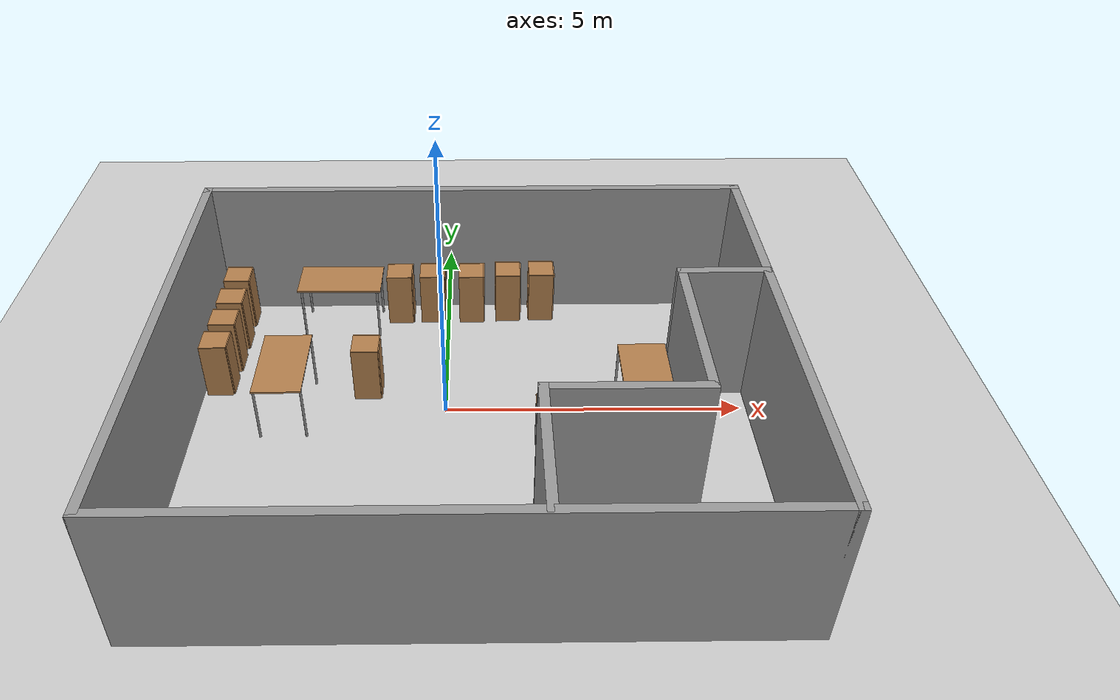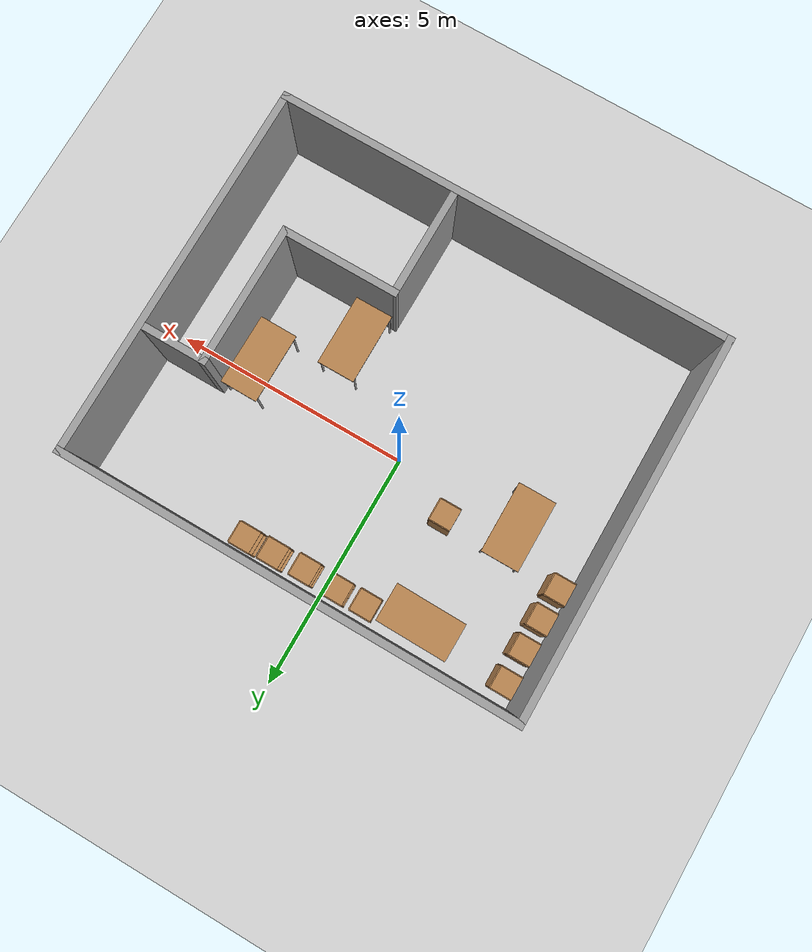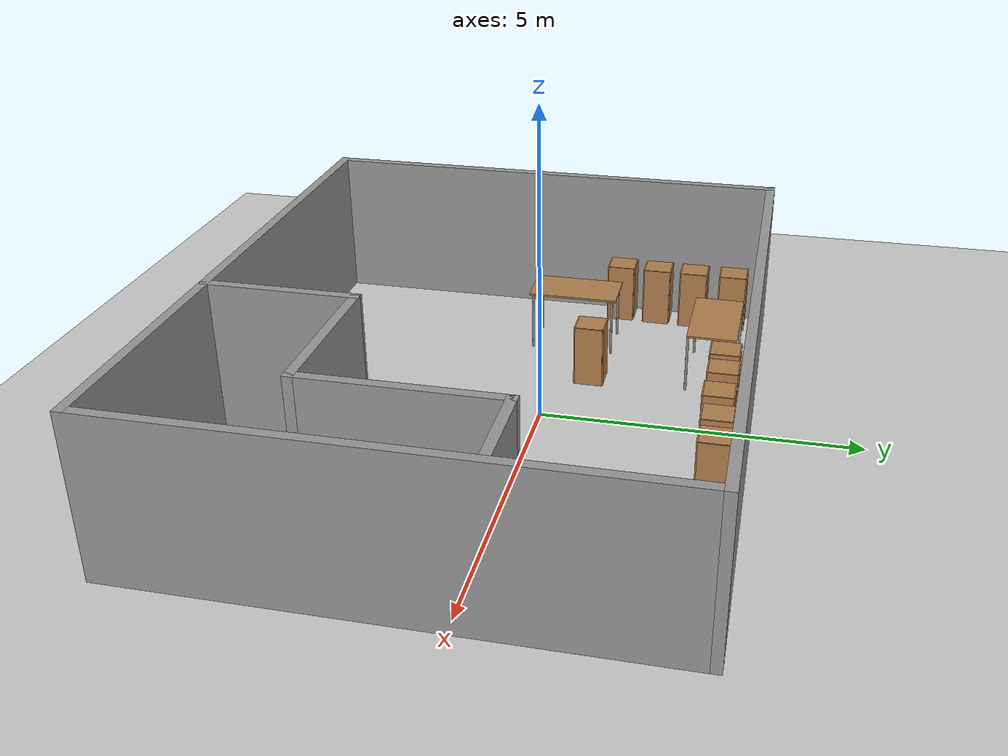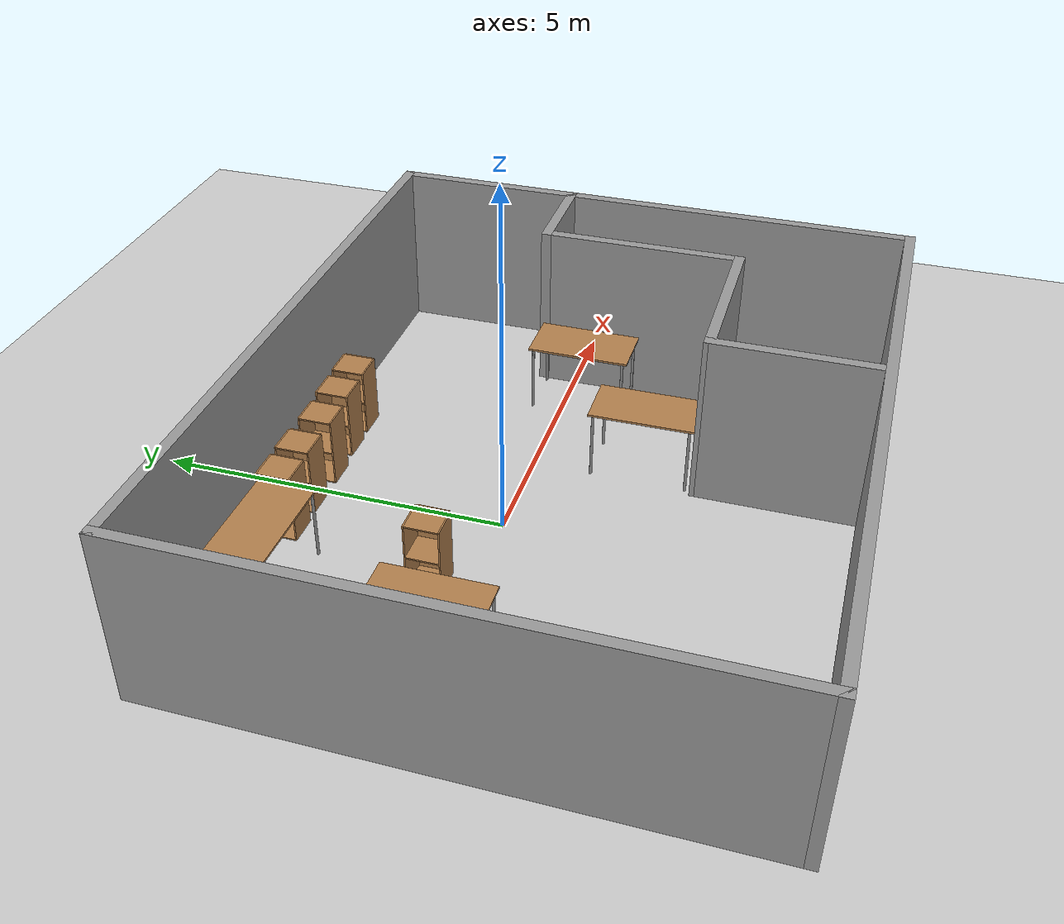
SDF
<sdf version="1.7">
 <world name="default">
  <light name="sun" type="directional">
   <pose>0 0 10 0 -0 0</pose>
   <diffuse>0.8 0.8 0.8 1</diffuse>
   <specular>0.2 0.2 0.2 1</specular>
   <attenuation>
    <range>1000</range>
    <constant>0.9</constant>
    <linear>0.01</linear>
    <quadratic>0.001</quadratic>
   </attenuation>
   <direction>-0.5 0.1 -0.9</direction>
   <spot><inner_angle>0</inner_angle><outer_angle>0</outer_angle><falloff>0</falloff></spot>
  </light>
  <model name="ground_plane">
   <static>1</static>
   <link name="link">
    <collision name="collision">
     <geometry><plane><normal>0 0 1</normal><size>100 100</size></plane></geometry>
     <surface><friction><ode><mu>100</mu><mu2>50</mu2></ode></friction></surface>
    </collision>
    <visual name="visual">
     <cast_shadows>0</cast_shadows>
     <geometry><plane><normal>0 0 1</normal><size>100 100</size></plane></geometry>
     <material>
      <script><uri>file://media/materials/scripts/gazebo.material</uri><name>Gazebo/Grey</name></script>
     </material>
    </visual>
   </link>
  </model>
  <gravity>0 0 -9.8</gravity>
  <magnetic_field>6e-06 2.3e-05 -4.2e-05</magnetic_field>
  <atmosphere type="adiabatic"/>
  <physics type="ode">
   <max_step_size>0.001</max_step_size>
   <real_time_factor>1</real_time_factor>
   <real_time_update_rate>1000</real_time_update_rate>
  </physics>
  <scene><ambient>0.4 0.4 0.4 1</ambient><background>0.7 0.7 0.7 1</background><shadows>1</shadows></scene>
  <audio><device>default</device></audio>
  <spherical_coordinates>
   <surface_model>EARTH_WGS84</surface_model>
   <latitude_deg>0</latitude_deg>
   <longitude_deg>0</longitude_deg>
   <elevation>0</elevation>
   <heading_deg>0</heading_deg>
  </spherical_coordinates>
  <model name="cmit_room">
   <pose>0.464192 -0.72522 0 0 -0 0</pose>
   <link name="Wall_1">
    <collision name="Wall_1_Collision">
     <geometry><box><size>9.6 0.15 2.5</size></box></geometry>
     <pose>0 0 1.25 0 -0 0</pose>
    </collision>
    <visual name="Wall_1_Visual">
     <pose>0 0 1.25 0 -0 0</pose>
     <geometry><box><size>9.6 0.15 2.5</size></box></geometry>
     <material>
      <script><uri>file://media/materials/scripts/gazebo.material</uri><name>Gazebo/Grey</name></script>
      <ambient>1 1 1 1</ambient>
     </material>
     <meta><layer>0</layer></meta>
    </visual>
    <pose>-0 -3.925 0 0 -0 0</pose>
   </link>
   <link name="Wall_11">
    <collision name="Wall_11_Collision">
     <geometry><box><size>8 0.15 2.5</size></box></geometry>
     <pose>0 0 1.25 0 -0 0</pose>
    </collision>
    <visual name="Wall_11_Visual">
     <pose>0 0 1.25 0 -0 0</pose>
     <geometry><box><size>8 0.15 2.5</size></box></geometry>
     <material>
      <script><uri>file://media/materials/scripts/gazebo.material</uri><name>Gazebo/Grey</name></script>
      <ambient>1 1 1 1</ambient>
     </material>
     <meta><layer>0</layer></meta>
    </visual>
    <pose>-4.725 0 0 0 -0 1.5708</pose>
   </link>
   <link name="Wall_12">
    <collision name="Wall_12_Collision">
     <geometry><box><size>9.6 0.15 2.5</size></box></geometry>
     <pose>0 0 1.25 0 -0 0</pose>
    </collision>
    <visual name="Wall_12_Visual">
     <pose>0 0 1.25 0 -0 0</pose>
     <geometry><box><size>9.6 0.15 2.5</size></box></geometry>
     <material>
      <script><uri>file://media/materials/scripts/gazebo.material</uri><name>Gazebo/Grey</name></script>
      <ambient>1 1 1 1</ambient>
     </material>
     <meta><layer>0</layer></meta>
    </visual>
    <pose>-0 3.925 0 0 -0 0</pose>
   </link>
   <link name="Wall_14">
    <collision name="Wall_14_Collision">
     <geometry><box><size>1.5 0.15 2.5</size></box></geometry>
     <pose>0 0 1.25 0 -0 0</pose>
    </collision>
    <visual name="Wall_14_Visual">
     <pose>0 0 1.25 0 -0 0</pose>
     <geometry><box><size>1.5 0.15 2.5</size></box></geometry>
     <material>
      <script><uri>file://media/materials/scripts/gazebo.material</uri><name>Gazebo/Grey</name></script>
      <ambient>1 1 1 1</ambient>
     </material>
     <meta><layer>0</layer></meta>
    </visual>
    <pose>4.03262 1.22052 0 0 -0 3.14159</pose>
   </link>
   <link name="Wall_15">
    <collision name="Wall_15_Collision">
     <geometry><box><size>3 0.15 2.5</size></box></geometry>
     <pose>0 0 1.25 0 -0 0</pose>
    </collision>
    <visual name="Wall_15_Visual">
     <pose>0 0 1.25 0 -0 0</pose>
     <geometry><box><size>3 0.15 2.5</size></box></geometry>
     <material>
      <script><uri>file://media/materials/scripts/gazebo.material</uri><name>Gazebo/Grey</name></script>
      <ambient>1 1 1 1</ambient>
     </material>
     <meta><layer>0</layer></meta>
    </visual>
    <pose>3.35762 -0.204478 0 0 -0 -1.5708</pose>
   </link>
   <link name="Wall_16">
    <collision name="Wall_16_Collision">
     <geometry><box><size>2.5 0.15 2.5</size></box></geometry>
     <pose>0 0 1.25 0 -0 0</pose>
    </collision>
    <visual name="Wall_16_Visual">
     <pose>0 0 1.25 0 -0 0</pose>
     <geometry><box><size>2.5 0.15 2.5</size></box></geometry>
     <material>
      <script><uri>file://media/materials/scripts/gazebo.material</uri><name>Gazebo/Grey</name></script>
      <ambient>1 1 1 1</ambient>
     </material>
     <meta><layer>0</layer></meta>
    </visual>
    <pose>2.18262 -1.62948 0 0 -0 3.14159</pose>
   </link>
   <link name="Wall_17">
    <collision name="Wall_17_Collision">
     <geometry><box><size>2.42896 0.15 2.5</size></box></geometry>
     <pose>0 0 1.25 0 -0 0</pose>
    </collision>
    <visual name="Wall_17_Visual">
     <pose>0 0 1.25 0 -0 0</pose>
     <geometry><box><size>2.42896 0.15 2.5</size></box></geometry>
     <material>
      <script><uri>file://media/materials/scripts/gazebo.material</uri><name>Gazebo/Grey</name></script>
      <ambient>1 1 1 1</ambient>
     </material>
     <meta><layer>0</layer></meta>
    </visual>
    <pose>1.00717 -2.76896 0 0 -0 -1.57119</pose>
   </link>
   <link name="Wall_6">
    <collision name="Wall_6_Collision">
     <geometry><box><size>8 0.15 2.5</size></box></geometry>
     <pose>0 0 1.25 0 -0 0</pose>
    </collision>
    <visual name="Wall_6_Visual">
     <pose>0 0 1.25 0 -0 0</pose>
     <geometry><box><size>8 0.15 2.5</size></box></geometry>
     <material>
      <script><uri>file://media/materials/scripts/gazebo.material</uri><name>Gazebo/Grey</name></script>
      <ambient>1 1 1 1</ambient>
     </material>
     <meta><layer>0</layer></meta>
    </visual>
    <pose>4.725 0 0 0 -0 1.5708</pose>
   </link>
   <static>1</static>
  </model>
  <model name="cabinet">
   <static>1</static>
   <link name="cabinet_bottom_plate">
    <inertial>
     <pose>0 0 -1 0 -0 0</pose>
     <inertia><ixx>2.05</ixx><ixy>0</ixy><ixz>0</ixz><iyy>2.05</iyy><iyz>0</iyz><izz>2.05</izz></inertia>
     <mass>25</mass>
    </inertial>
    <collision name="cabinet_bottom_plate_geom">
     <pose>0 0 0.01 0 -0 0</pose>
     <geometry><box><size>0.45 0.45 0.02</size></box></geometry>
    </collision>
    <visual name="cabinet_bottom_plate_geom_visual">
     <pose>0 0 0.01 0 -0 0</pose>
     <geometry><box><size>0.45 0.45 0.02</size></box></geometry>
     <material>
      <script><uri>file://media/materials/scripts/gazebo.material</uri><name>Gazebo/Wood</name></script>
     </material>
    </visual>
    <collision name="cabinet_bottom_plate_geom_cabinet_back_plate">
     <pose>0.235 0 0.51 0 -0 0</pose>
     <geometry><box><size>0.02 0.45 1.02</size></box></geometry>
    </collision>
    <visual name="cabinet_bottom_plate_geom_cabinet_back_plate_visual">
     <pose>0.235 0 0.51 0 -0 0</pose>
     <geometry><box><size>0.02 0.45 1.02</size></box></geometry>
     <material>
      <script><uri>file://media/materials/scripts/gazebo.material</uri><name>Gazebo/Wood</name></script>
     </material>
    </visual>
    <collision name="cabinet_bottom_plate_geom_cabinet_left_plate">
     <pose>0 0.235 0.51 0 -0 0</pose>
     <geometry><box><size>0.45 0.02 1.02</size></box></geometry>
    </collision>
    <visual name="cabinet_bottom_plate_geom_cabinet_left_plate_visual">
     <pose>0 0.235 0.51 0 -0 0</pose>
     <geometry><box><size>0.45 0.02 1.02</size></box></geometry>
     <material>
      <script><uri>file://media/materials/scripts/gazebo.material</uri><name>Gazebo/Wood</name></script>
     </material>
    </visual>
    <collision name="cabinet_bottom_plate_geom_cabinet_middle_plate">
     <pose>0 0 0.51 0 -0 0</pose>
     <geometry><box><size>0.45 0.45 0.02</size></box></geometry>
    </collision>
    <visual name="cabinet_bottom_plate_geom_cabinet_middle_plate_visual">
     <pose>0 0 0.51 0 -0 0</pose>
     <geometry><box><size>0.45 0.45 0.02</size></box></geometry>
     <material>
      <script><uri>file://media/materials/scripts/gazebo.material</uri><name>Gazebo/Wood</name></script>
     </material>
    </visual>
    <collision name="cabinet_bottom_plate_geom_cabinet_right_plate">
     <pose>0 -0.235 0.51 0 -0 0</pose>
     <geometry><box><size>0.45 0.02 1.02</size></box></geometry>
    </collision>
    <visual name="cabinet_bottom_plate_geom_cabinet_right_plate_visual">
     <pose>0 -0.235 0.51 0 -0 0</pose>
     <geometry><box><size>0.45 0.02 1.02</size></box></geometry>
     <material>
      <script><uri>file://media/materials/scripts/gazebo.material</uri><name>Gazebo/Wood</name></script>
     </material>
    </visual>
    <collision name="cabinet_bottom_plate_geom_cabinet_top_plate">
     <pose>0 0 1.01 0 -0 0</pose>
     <geometry><box><size>0.45 0.45 0.02</size></box></geometry>
    </collision>
    <visual name="cabinet_bottom_plate_geom_cabinet_top_plate_visual">
     <pose>0 0 1.01 0 -0 0</pose>
     <geometry><box><size>0.45 0.45 0.02</size></box></geometry>
     <material>
      <script><uri>file://media/materials/scripts/gazebo.material</uri><name>Gazebo/Wood</name></script>
     </material>
    </visual>
   </link>
   <pose>-3.86136 2.69886 0 0 -0 0</pose>
  </model>
  <model name="table">
   <static>1</static>
   <link name="link">
    <collision name="surface">
     <pose>0 0 1 0 -0 0</pose>
     <geometry><box><size>1.5 0.8 0.03</size></box></geometry>
     <surface><friction><ode><mu>0.6</mu><mu2>0.6</mu2></ode></friction></surface>
    </collision>
    <visual name="visual1">
     <pose>0 0 1 0 -0 0</pose>
     <geometry><box><size>1.5 0.8 0.03</size></box></geometry>
     <material>
      <script><uri>file://media/materials/scripts/gazebo.material</uri><name>Gazebo/Wood</name></script>
     </material>
    </visual>
    <collision name="front_left_leg">
     <pose>0.68 0.38 0.5 0 -0 0</pose>
     <geometry><cylinder><radius>0.02</radius><length>1</length></cylinder></geometry>
    </collision>
    <visual name="front_left_leg">
     <pose>0.68 0.38 0.5 0 -0 0</pose>
     <geometry><cylinder><radius>0.02</radius><length>1</length></cylinder></geometry>
     <material>
      <script><uri>file://media/materials/scripts/gazebo.material</uri><name>Gazebo/Grey</name></script>
     </material>
    </visual>
    <collision name="front_right_leg">
     <pose>0.68 -0.38 0.5 0 -0 0</pose>
     <geometry><cylinder><radius>0.02</radius><length>1</length></cylinder></geometry>
    </collision>
    <visual name="front_right_leg">
     <pose>0.68 -0.38 0.5 0 -0 0</pose>
     <geometry><cylinder><radius>0.02</radius><length>1</length></cylinder></geometry>
     <material>
      <script><uri>file://media/materials/scripts/gazebo.material</uri><name>Gazebo/Grey</name></script>
     </material>
    </visual>
    <collision name="back_right_leg">
     <pose>-0.68 -0.38 0.5 0 -0 0</pose>
     <geometry><cylinder><radius>0.02</radius><length>1</length></cylinder></geometry>
    </collision>
    <visual name="back_right_leg">
     <pose>-0.68 -0.38 0.5 0 -0 0</pose>
     <geometry><cylinder><radius>0.02</radius><length>1</length></cylinder></geometry>
     <material>
      <script><uri>file://media/materials/scripts/gazebo.material</uri><name>Gazebo/Grey</name></script>
     </material>
    </visual>
    <collision name="back_left_leg">
     <pose>-0.68 0.38 0.5 0 -0 0</pose>
     <geometry><cylinder><radius>0.02</radius><length>1</length></cylinder></geometry>
    </collision>
    <visual name="back_left_leg">
     <pose>-0.68 0.38 0.5 0 -0 0</pose>
     <geometry><cylinder><radius>0.02</radius><length>1</length></cylinder></geometry>
     <material>
      <script><uri>file://media/materials/scripts/gazebo.material</uri><name>Gazebo/Grey</name></script>
     </material>
    </visual>
   </link>
   <pose>1.87957 -1.5203 0 0 -0 1.57415</pose>
  </model>
  <model name="table_clone">
   <static>1</static>
   <link name="link">
    <collision name="surface">
     <pose>0 0 1 0 -0 0</pose>
     <geometry><box><size>1.5 0.8 0.03</size></box></geometry>
     <surface><friction><ode><mu>0.6</mu><mu2>0.6</mu2></ode></friction></surface>
    </collision>
    <visual name="visual1">
     <pose>0 0 1 0 -0 0</pose>
     <geometry><box><size>1.5 0.8 0.03</size></box></geometry>
     <material>
      <script><uri>file://media/materials/scripts/gazebo.material</uri><name>Gazebo/Wood</name></script>
     </material>
    </visual>
    <collision name="front_left_leg">
     <pose>0.68 0.38 0.5 0 -0 0</pose>
     <geometry><cylinder><radius>0.02</radius><length>1</length></cylinder></geometry>
    </collision>
    <visual name="front_left_leg">
     <pose>0.68 0.38 0.5 0 -0 0</pose>
     <geometry><cylinder><radius>0.02</radius><length>1</length></cylinder></geometry>
     <material>
      <script><uri>file://media/materials/scripts/gazebo.material</uri><name>Gazebo/Grey</name></script>
     </material>
    </visual>
    <collision name="front_right_leg">
     <pose>0.68 -0.38 0.5 0 -0 0</pose>
     <geometry><cylinder><radius>0.02</radius><length>1</length></cylinder></geometry>
    </collision>
    <visual name="front_right_leg">
     <pose>0.68 -0.38 0.5 0 -0 0</pose>
     <geometry><cylinder><radius>0.02</radius><length>1</length></cylinder></geometry>
     <material>
      <script><uri>file://media/materials/scripts/gazebo.material</uri><name>Gazebo/Grey</name></script>
     </material>
    </visual>
    <collision name="back_right_leg">
     <pose>-0.68 -0.38 0.5 0 -0 0</pose>
     <geometry><cylinder><radius>0.02</radius><length>1</length></cylinder></geometry>
    </collision>
    <visual name="back_right_leg">
     <pose>-0.68 -0.38 0.5 0 -0 0</pose>
     <geometry><cylinder><radius>0.02</radius><length>1</length></cylinder></geometry>
     <material>
      <script><uri>file://media/materials/scripts/gazebo.material</uri><name>Gazebo/Grey</name></script>
     </material>
    </visual>
    <collision name="back_left_leg">
     <pose>-0.68 0.38 0.5 0 -0 0</pose>
     <geometry><cylinder><radius>0.02</radius><length>1</length></cylinder></geometry>
    </collision>
    <visual name="back_left_leg">
     <pose>-0.68 0.38 0.5 0 -0 0</pose>
     <geometry><cylinder><radius>0.02</radius><length>1</length></cylinder></geometry>
     <material>
      <script><uri>file://media/materials/scripts/gazebo.material</uri><name>Gazebo/Grey</name></script>
     </material>
    </visual>
   </link>
   <pose>3.29984 -0.245218 0 0 -0 1.5643</pose>
  </model>
  <model name="cabinet_clone">
   <static>1</static>
   <link name="cabinet_bottom_plate">
    <inertial>
     <pose>0 0 -1 0 -0 0</pose>
     <inertia><ixx>2.05</ixx><ixy>0</ixy><ixz>0</ixz><iyy>2.05</iyy><iyz>0</iyz><izz>2.05</izz></inertia>
     <mass>25</mass>
    </inertial>
    <collision name="cabinet_bottom_plate_geom">
     <pose>0 0 0.01 0 -0 0</pose>
     <geometry><box><size>0.45 0.45 0.02</size></box></geometry>
    </collision>
    <visual name="cabinet_bottom_plate_geom_visual">
     <pose>0 0 0.01 0 -0 0</pose>
     <geometry><box><size>0.45 0.45 0.02</size></box></geometry>
     <material>
      <script><uri>file://media/materials/scripts/gazebo.material</uri><name>Gazebo/Wood</name></script>
     </material>
    </visual>
    <collision name="cabinet_bottom_plate_geom_cabinet_back_plate">
     <pose>0.235 0 0.51 0 -0 0</pose>
     <geometry><box><size>0.02 0.45 1.02</size></box></geometry>
    </collision>
    <visual name="cabinet_bottom_plate_geom_cabinet_back_plate_visual">
     <pose>0.235 0 0.51 0 -0 0</pose>
     <geometry><box><size>0.02 0.45 1.02</size></box></geometry>
     <material>
      <script><uri>file://media/materials/scripts/gazebo.material</uri><name>Gazebo/Wood</name></script>
     </material>
    </visual>
    <collision name="cabinet_bottom_plate_geom_cabinet_left_plate">
     <pose>0 0.235 0.51 0 -0 0</pose>
     <geometry><box><size>0.45 0.02 1.02</size></box></geometry>
    </collision>
    <visual name="cabinet_bottom_plate_geom_cabinet_left_plate_visual">
     <pose>0 0.235 0.51 0 -0 0</pose>
     <geometry><box><size>0.45 0.02 1.02</size></box></geometry>
     <material>
      <script><uri>file://media/materials/scripts/gazebo.material</uri><name>Gazebo/Wood</name></script>
     </material>
    </visual>
    <collision name="cabinet_bottom_plate_geom_cabinet_middle_plate">
     <pose>0 0 0.51 0 -0 0</pose>
     <geometry><box><size>0.45 0.45 0.02</size></box></geometry>
    </collision>
    <visual name="cabinet_bottom_plate_geom_cabinet_middle_plate_visual">
     <pose>0 0 0.51 0 -0 0</pose>
     <geometry><box><size>0.45 0.45 0.02</size></box></geometry>
     <material>
      <script><uri>file://media/materials/scripts/gazebo.material</uri><name>Gazebo/Wood</name></script>
     </material>
    </visual>
    <collision name="cabinet_bottom_plate_geom_cabinet_right_plate">
     <pose>0 -0.235 0.51 0 -0 0</pose>
     <geometry><box><size>0.45 0.02 1.02</size></box></geometry>
    </collision>
    <visual name="cabinet_bottom_plate_geom_cabinet_right_plate_visual">
     <pose>0 -0.235 0.51 0 -0 0</pose>
     <geometry><box><size>0.45 0.02 1.02</size></box></geometry>
     <material>
      <script><uri>file://media/materials/scripts/gazebo.material</uri><name>Gazebo/Wood</name></script>
     </material>
    </visual>
    <collision name="cabinet_bottom_plate_geom_cabinet_top_plate">
     <pose>0 0 1.01 0 -0 0</pose>
     <geometry><box><size>0.45 0.45 0.02</size></box></geometry>
    </collision>
    <visual name="cabinet_bottom_plate_geom_cabinet_top_plate_visual">
     <pose>0 0 1.01 0 -0 0</pose>
     <geometry><box><size>0.45 0.45 0.02</size></box></geometry>
     <material>
      <script><uri>file://media/materials/scripts/gazebo.material</uri><name>Gazebo/Wood</name></script>
     </material>
    </visual>
   </link>
   <pose>-3.8629 2.00346 0 0 -0 0</pose>
  </model>
  <model name="cabinet_clone_0">
   <static>1</static>
   <link name="cabinet_bottom_plate">
    <inertial>
     <pose>0 0 -1 0 -0 0</pose>
     <inertia><ixx>2.05</ixx><ixy>0</ixy><ixz>0</ixz><iyy>2.05</iyy><iyz>0</iyz><izz>2.05</izz></inertia>
     <mass>25</mass>
    </inertial>
    <collision name="cabinet_bottom_plate_geom">
     <pose>0 0 0.01 0 -0 0</pose>
     <geometry><box><size>0.45 0.45 0.02</size></box></geometry>
    </collision>
    <visual name="cabinet_bottom_plate_geom_visual">
     <pose>0 0 0.01 0 -0 0</pose>
     <geometry><box><size>0.45 0.45 0.02</size></box></geometry>
     <material>
      <script><uri>file://media/materials/scripts/gazebo.material</uri><name>Gazebo/Wood</name></script>
     </material>
    </visual>
    <collision name="cabinet_bottom_plate_geom_cabinet_back_plate">
     <pose>0.235 0 0.51 0 -0 0</pose>
     <geometry><box><size>0.02 0.45 1.02</size></box></geometry>
    </collision>
    <visual name="cabinet_bottom_plate_geom_cabinet_back_plate_visual">
     <pose>0.235 0 0.51 0 -0 0</pose>
     <geometry><box><size>0.02 0.45 1.02</size></box></geometry>
     <material>
      <script><uri>file://media/materials/scripts/gazebo.material</uri><name>Gazebo/Wood</name></script>
     </material>
    </visual>
    <collision name="cabinet_bottom_plate_geom_cabinet_left_plate">
     <pose>0 0.235 0.51 0 -0 0</pose>
     <geometry><box><size>0.45 0.02 1.02</size></box></geometry>
    </collision>
    <visual name="cabinet_bottom_plate_geom_cabinet_left_plate_visual">
     <pose>0 0.235 0.51 0 -0 0</pose>
     <geometry><box><size>0.45 0.02 1.02</size></box></geometry>
     <material>
      <script><uri>file://media/materials/scripts/gazebo.material</uri><name>Gazebo/Wood</name></script>
     </material>
    </visual>
    <collision name="cabinet_bottom_plate_geom_cabinet_middle_plate">
     <pose>0 0 0.51 0 -0 0</pose>
     <geometry><box><size>0.45 0.45 0.02</size></box></geometry>
    </collision>
    <visual name="cabinet_bottom_plate_geom_cabinet_middle_plate_visual">
     <pose>0 0 0.51 0 -0 0</pose>
     <geometry><box><size>0.45 0.45 0.02</size></box></geometry>
     <material>
      <script><uri>file://media/materials/scripts/gazebo.material</uri><name>Gazebo/Wood</name></script>
     </material>
    </visual>
    <collision name="cabinet_bottom_plate_geom_cabinet_right_plate">
     <pose>0 -0.235 0.51 0 -0 0</pose>
     <geometry><box><size>0.45 0.02 1.02</size></box></geometry>
    </collision>
    <visual name="cabinet_bottom_plate_geom_cabinet_right_plate_visual">
     <pose>0 -0.235 0.51 0 -0 0</pose>
     <geometry><box><size>0.45 0.02 1.02</size></box></geometry>
     <material>
      <script><uri>file://media/materials/scripts/gazebo.material</uri><name>Gazebo/Wood</name></script>
     </material>
    </visual>
    <collision name="cabinet_bottom_plate_geom_cabinet_top_plate">
     <pose>0 0 1.01 0 -0 0</pose>
     <geometry><box><size>0.45 0.45 0.02</size></box></geometry>
    </collision>
    <visual name="cabinet_bottom_plate_geom_cabinet_top_plate_visual">
     <pose>0 0 1.01 0 -0 0</pose>
     <geometry><box><size>0.45 0.45 0.02</size></box></geometry>
     <material>
      <script><uri>file://media/materials/scripts/gazebo.material</uri><name>Gazebo/Wood</name></script>
     </material>
    </visual>
   </link>
   <pose>-3.87496 1.35415 0 0 -0 0</pose>
  </model>
  <model name="cabinet_clone_1">
   <static>1</static>
   <link name="cabinet_bottom_plate">
    <inertial>
     <pose>0 0 -1 0 -0 0</pose>
     <inertia><ixx>2.05</ixx><ixy>0</ixy><ixz>0</ixz><iyy>2.05</iyy><iyz>0</iyz><izz>2.05</izz></inertia>
     <mass>25</mass>
    </inertial>
    <collision name="cabinet_bottom_plate_geom">
     <pose>0 0 0.01 0 -0 0</pose>
     <geometry><box><size>0.45 0.45 0.02</size></box></geometry>
    </collision>
    <visual name="cabinet_bottom_plate_geom_visual">
     <pose>0 0 0.01 0 -0 0</pose>
     <geometry><box><size>0.45 0.45 0.02</size></box></geometry>
     <material>
      <script><uri>file://media/materials/scripts/gazebo.material</uri><name>Gazebo/Wood</name></script>
     </material>
    </visual>
    <collision name="cabinet_bottom_plate_geom_cabinet_back_plate">
     <pose>0.235 0 0.51 0 -0 0</pose>
     <geometry><box><size>0.02 0.45 1.02</size></box></geometry>
    </collision>
    <visual name="cabinet_bottom_plate_geom_cabinet_back_plate_visual">
     <pose>0.235 0 0.51 0 -0 0</pose>
     <geometry><box><size>0.02 0.45 1.02</size></box></geometry>
     <material>
      <script><uri>file://media/materials/scripts/gazebo.material</uri><name>Gazebo/Wood</name></script>
     </material>
    </visual>
    <collision name="cabinet_bottom_plate_geom_cabinet_left_plate">
     <pose>0 0.235 0.51 0 -0 0</pose>
     <geometry><box><size>0.45 0.02 1.02</size></box></geometry>
    </collision>
    <visual name="cabinet_bottom_plate_geom_cabinet_left_plate_visual">
     <pose>0 0.235 0.51 0 -0 0</pose>
     <geometry><box><size>0.45 0.02 1.02</size></box></geometry>
     <material>
      <script><uri>file://media/materials/scripts/gazebo.material</uri><name>Gazebo/Wood</name></script>
     </material>
    </visual>
    <collision name="cabinet_bottom_plate_geom_cabinet_middle_plate">
     <pose>0 0 0.51 0 -0 0</pose>
     <geometry><box><size>0.45 0.45 0.02</size></box></geometry>
    </collision>
    <visual name="cabinet_bottom_plate_geom_cabinet_middle_plate_visual">
     <pose>0 0 0.51 0 -0 0</pose>
     <geometry><box><size>0.45 0.45 0.02</size></box></geometry>
     <material>
      <script><uri>file://media/materials/scripts/gazebo.material</uri><name>Gazebo/Wood</name></script>
     </material>
    </visual>
    <collision name="cabinet_bottom_plate_geom_cabinet_right_plate">
     <pose>0 -0.235 0.51 0 -0 0</pose>
     <geometry><box><size>0.45 0.02 1.02</size></box></geometry>
    </collision>
    <visual name="cabinet_bottom_plate_geom_cabinet_right_plate_visual">
     <pose>0 -0.235 0.51 0 -0 0</pose>
     <geometry><box><size>0.45 0.02 1.02</size></box></geometry>
     <material>
      <script><uri>file://media/materials/scripts/gazebo.material</uri><name>Gazebo/Wood</name></script>
     </material>
    </visual>
    <collision name="cabinet_bottom_plate_geom_cabinet_top_plate">
     <pose>0 0 1.01 0 -0 0</pose>
     <geometry><box><size>0.45 0.45 0.02</size></box></geometry>
    </collision>
    <visual name="cabinet_bottom_plate_geom_cabinet_top_plate_visual">
     <pose>0 0 1.01 0 -0 0</pose>
     <geometry><box><size>0.45 0.45 0.02</size></box></geometry>
     <material>
      <script><uri>file://media/materials/scripts/gazebo.material</uri><name>Gazebo/Wood</name></script>
     </material>
    </visual>
   </link>
   <pose>-3.89846 0.705302 0 0 -0 0</pose>
  </model>
  <model name="cabinet_clone_2">
   <static>1</static>
   <link name="cabinet_bottom_plate">
    <inertial>
     <pose>0 0 -1 0 -0 0</pose>
     <inertia><ixx>2.05</ixx><ixy>0</ixy><ixz>0</ixz><iyy>2.05</iyy><iyz>0</iyz><izz>2.05</izz></inertia>
     <mass>25</mass>
    </inertial>
    <collision name="cabinet_bottom_plate_geom">
     <pose>0 0 0.01 0 -0 0</pose>
     <geometry><box><size>0.45 0.45 0.02</size></box></geometry>
    </collision>
    <visual name="cabinet_bottom_plate_geom_visual">
     <pose>0 0 0.01 0 -0 0</pose>
     <geometry><box><size>0.45 0.45 0.02</size></box></geometry>
     <material>
      <script><uri>file://media/materials/scripts/gazebo.material</uri><name>Gazebo/Wood</name></script>
     </material>
    </visual>
    <collision name="cabinet_bottom_plate_geom_cabinet_back_plate">
     <pose>0.235 0 0.51 0 -0 0</pose>
     <geometry><box><size>0.02 0.45 1.02</size></box></geometry>
    </collision>
    <visual name="cabinet_bottom_plate_geom_cabinet_back_plate_visual">
     <pose>0.235 0 0.51 0 -0 0</pose>
     <geometry><box><size>0.02 0.45 1.02</size></box></geometry>
     <material>
      <script><uri>file://media/materials/scripts/gazebo.material</uri><name>Gazebo/Wood</name></script>
     </material>
    </visual>
    <collision name="cabinet_bottom_plate_geom_cabinet_left_plate">
     <pose>0 0.235 0.51 0 -0 0</pose>
     <geometry><box><size>0.45 0.02 1.02</size></box></geometry>
    </collision>
    <visual name="cabinet_bottom_plate_geom_cabinet_left_plate_visual">
     <pose>0 0.235 0.51 0 -0 0</pose>
     <geometry><box><size>0.45 0.02 1.02</size></box></geometry>
     <material>
      <script><uri>file://media/materials/scripts/gazebo.material</uri><name>Gazebo/Wood</name></script>
     </material>
    </visual>
    <collision name="cabinet_bottom_plate_geom_cabinet_middle_plate">
     <pose>0 0 0.51 0 -0 0</pose>
     <geometry><box><size>0.45 0.45 0.02</size></box></geometry>
    </collision>
    <visual name="cabinet_bottom_plate_geom_cabinet_middle_plate_visual">
     <pose>0 0 0.51 0 -0 0</pose>
     <geometry><box><size>0.45 0.45 0.02</size></box></geometry>
     <material>
      <script><uri>file://media/materials/scripts/gazebo.material</uri><name>Gazebo/Wood</name></script>
     </material>
    </visual>
    <collision name="cabinet_bottom_plate_geom_cabinet_right_plate">
     <pose>0 -0.235 0.51 0 -0 0</pose>
     <geometry><box><size>0.45 0.02 1.02</size></box></geometry>
    </collision>
    <visual name="cabinet_bottom_plate_geom_cabinet_right_plate_visual">
     <pose>0 -0.235 0.51 0 -0 0</pose>
     <geometry><box><size>0.45 0.02 1.02</size></box></geometry>
     <material>
      <script><uri>file://media/materials/scripts/gazebo.material</uri><name>Gazebo/Wood</name></script>
     </material>
    </visual>
    <collision name="cabinet_bottom_plate_geom_cabinet_top_plate">
     <pose>0 0 1.01 0 -0 0</pose>
     <geometry><box><size>0.45 0.45 0.02</size></box></geometry>
    </collision>
    <visual name="cabinet_bottom_plate_geom_cabinet_top_plate_visual">
     <pose>0 0 1.01 0 -0 0</pose>
     <geometry><box><size>0.45 0.45 0.02</size></box></geometry>
     <material>
      <script><uri>file://media/materials/scripts/gazebo.material</uri><name>Gazebo/Wood</name></script>
     </material>
    </visual>
   </link>
   <pose>-0.89177 2.77876 0 0 -0 0</pose>
  </model>
  <model name="table_clone_0">
   <static>1</static>
   <link name="link">
    <collision name="surface">
     <pose>0 0 1 0 -0 0</pose>
     <geometry><box><size>1.5 0.8 0.03</size></box></geometry>
     <surface><friction><ode><mu>0.6</mu><mu2>0.6</mu2></ode></friction></surface>
    </collision>
    <visual name="visual1">
     <pose>0 0 1 0 -0 0</pose>
     <geometry><box><size>1.5 0.8 0.03</size></box></geometry>
     <material>
      <script><uri>file://media/materials/scripts/gazebo.material</uri><name>Gazebo/Wood</name></script>
     </material>
    </visual>
    <collision name="front_left_leg">
     <pose>0.68 0.38 0.5 0 -0 0</pose>
     <geometry><cylinder><radius>0.02</radius><length>1</length></cylinder></geometry>
    </collision>
    <visual name="front_left_leg">
     <pose>0.68 0.38 0.5 0 -0 0</pose>
     <geometry><cylinder><radius>0.02</radius><length>1</length></cylinder></geometry>
     <material>
      <script><uri>file://media/materials/scripts/gazebo.material</uri><name>Gazebo/Grey</name></script>
     </material>
    </visual>
    <collision name="front_right_leg">
     <pose>0.68 -0.38 0.5 0 -0 0</pose>
     <geometry><cylinder><radius>0.02</radius><length>1</length></cylinder></geometry>
    </collision>
    <visual name="front_right_leg">
     <pose>0.68 -0.38 0.5 0 -0 0</pose>
     <geometry><cylinder><radius>0.02</radius><length>1</length></cylinder></geometry>
     <material>
      <script><uri>file://media/materials/scripts/gazebo.material</uri><name>Gazebo/Grey</name></script>
     </material>
    </visual>
    <collision name="back_right_leg">
     <pose>-0.68 -0.38 0.5 0 -0 0</pose>
     <geometry><cylinder><radius>0.02</radius><length>1</length></cylinder></geometry>
    </collision>
    <visual name="back_right_leg">
     <pose>-0.68 -0.38 0.5 0 -0 0</pose>
     <geometry><cylinder><radius>0.02</radius><length>1</length></cylinder></geometry>
     <material>
      <script><uri>file://media/materials/scripts/gazebo.material</uri><name>Gazebo/Grey</name></script>
     </material>
    </visual>
    <collision name="back_left_leg">
     <pose>-0.68 0.38 0.5 0 -0 0</pose>
     <geometry><cylinder><radius>0.02</radius><length>1</length></cylinder></geometry>
    </collision>
    <visual name="back_left_leg">
     <pose>-0.68 0.38 0.5 0 -0 0</pose>
     <geometry><cylinder><radius>0.02</radius><length>1</length></cylinder></geometry>
     <material>
      <script><uri>file://media/materials/scripts/gazebo.material</uri><name>Gazebo/Grey</name></script>
     </material>
    </visual>
   </link>
   <pose>-1.94562 2.53609 0 0 -0 3.1318</pose>
  </model>
  <model name="cabinet_clone_2_clone">
   <static>1</static>
   <link name="cabinet_bottom_plate">
    <inertial>
     <pose>0 0 -1 0 -0 0</pose>
     <inertia><ixx>2.05</ixx><ixy>0</ixy><ixz>0</ixz><iyy>2.05</iyy><iyz>0</iyz><izz>2.05</izz></inertia>
     <mass>25</mass>
    </inertial>
    <collision name="cabinet_bottom_plate_geom">
     <pose>0 0 0.01 0 -0 0</pose>
     <geometry><box><size>0.45 0.45 0.02</size></box></geometry>
    </collision>
    <visual name="cabinet_bottom_plate_geom_visual">
     <pose>0 0 0.01 0 -0 0</pose>
     <geometry><box><size>0.45 0.45 0.02</size></box></geometry>
     <material>
      <script><uri>file://media/materials/scripts/gazebo.material</uri><name>Gazebo/Wood</name></script>
     </material>
    </visual>
    <collision name="cabinet_bottom_plate_geom_cabinet_back_plate">
     <pose>0.235 0 0.51 0 -0 0</pose>
     <geometry><box><size>0.02 0.45 1.02</size></box></geometry>
    </collision>
    <visual name="cabinet_bottom_plate_geom_cabinet_back_plate_visual">
     <pose>0.235 0 0.51 0 -0 0</pose>
     <geometry><box><size>0.02 0.45 1.02</size></box></geometry>
     <material>
      <script><uri>file://media/materials/scripts/gazebo.material</uri><name>Gazebo/Wood</name></script>
     </material>
    </visual>
    <collision name="cabinet_bottom_plate_geom_cabinet_left_plate">
     <pose>0 0.235 0.51 0 -0 0</pose>
     <geometry><box><size>0.45 0.02 1.02</size></box></geometry>
    </collision>
    <visual name="cabinet_bottom_plate_geom_cabinet_left_plate_visual">
     <pose>0 0.235 0.51 0 -0 0</pose>
     <geometry><box><size>0.45 0.02 1.02</size></box></geometry>
     <material>
      <script><uri>file://media/materials/scripts/gazebo.material</uri><name>Gazebo/Wood</name></script>
     </material>
    </visual>
    <collision name="cabinet_bottom_plate_geom_cabinet_middle_plate">
     <pose>0 0 0.51 0 -0 0</pose>
     <geometry><box><size>0.45 0.45 0.02</size></box></geometry>
    </collision>
    <visual name="cabinet_bottom_plate_geom_cabinet_middle_plate_visual">
     <pose>0 0 0.51 0 -0 0</pose>
     <geometry><box><size>0.45 0.45 0.02</size></box></geometry>
     <material>
      <script><uri>file://media/materials/scripts/gazebo.material</uri><name>Gazebo/Wood</name></script>
     </material>
    </visual>
    <collision name="cabinet_bottom_plate_geom_cabinet_right_plate">
     <pose>0 -0.235 0.51 0 -0 0</pose>
     <geometry><box><size>0.45 0.02 1.02</size></box></geometry>
    </collision>
    <visual name="cabinet_bottom_plate_geom_cabinet_right_plate_visual">
     <pose>0 -0.235 0.51 0 -0 0</pose>
     <geometry><box><size>0.45 0.02 1.02</size></box></geometry>
     <material>
      <script><uri>file://media/materials/scripts/gazebo.material</uri><name>Gazebo/Wood</name></script>
     </material>
    </visual>
    <collision name="cabinet_bottom_plate_geom_cabinet_top_plate">
     <pose>0 0 1.01 0 -0 0</pose>
     <geometry><box><size>0.45 0.45 0.02</size></box></geometry>
    </collision>
    <visual name="cabinet_bottom_plate_geom_cabinet_top_plate_visual">
     <pose>0 0 1.01 0 -0 0</pose>
     <geometry><box><size>0.45 0.45 0.02</size></box></geometry>
     <material>
      <script><uri>file://media/materials/scripts/gazebo.material</uri><name>Gazebo/Wood</name></script>
     </material>
    </visual>
   </link>
   <pose>-0.28351 2.79368 0 0 -0 0</pose>
  </model>
  <model name="cabinet_clone_2_clone_clone">
   <static>1</static>
   <link name="cabinet_bottom_plate">
    <inertial>
     <pose>0 0 -1 0 -0 0</pose>
     <inertia><ixx>2.05</ixx><ixy>0</ixy><ixz>0</ixz><iyy>2.05</iyy><iyz>0</iyz><izz>2.05</izz></inertia>
     <mass>25</mass>
    </inertial>
    <collision name="cabinet_bottom_plate_geom">
     <pose>0 0 0.01 0 -0 0</pose>
     <geometry><box><size>0.45 0.45 0.02</size></box></geometry>
    </collision>
    <visual name="cabinet_bottom_plate_geom_visual">
     <pose>0 0 0.01 0 -0 0</pose>
     <geometry><box><size>0.45 0.45 0.02</size></box></geometry>
     <material>
      <script><uri>file://media/materials/scripts/gazebo.material</uri><name>Gazebo/Wood</name></script>
     </material>
    </visual>
    <collision name="cabinet_bottom_plate_geom_cabinet_back_plate">
     <pose>0.235 0 0.51 0 -0 0</pose>
     <geometry><box><size>0.02 0.45 1.02</size></box></geometry>
    </collision>
    <visual name="cabinet_bottom_plate_geom_cabinet_back_plate_visual">
     <pose>0.235 0 0.51 0 -0 0</pose>
     <geometry><box><size>0.02 0.45 1.02</size></box></geometry>
     <material>
      <script><uri>file://media/materials/scripts/gazebo.material</uri><name>Gazebo/Wood</name></script>
     </material>
    </visual>
    <collision name="cabinet_bottom_plate_geom_cabinet_left_plate">
     <pose>0 0.235 0.51 0 -0 0</pose>
     <geometry><box><size>0.45 0.02 1.02</size></box></geometry>
    </collision>
    <visual name="cabinet_bottom_plate_geom_cabinet_left_plate_visual">
     <pose>0 0.235 0.51 0 -0 0</pose>
     <geometry><box><size>0.45 0.02 1.02</size></box></geometry>
     <material>
      <script><uri>file://media/materials/scripts/gazebo.material</uri><name>Gazebo/Wood</name></script>
     </material>
    </visual>
    <collision name="cabinet_bottom_plate_geom_cabinet_middle_plate">
     <pose>0 0 0.51 0 -0 0</pose>
     <geometry><box><size>0.45 0.45 0.02</size></box></geometry>
    </collision>
    <visual name="cabinet_bottom_plate_geom_cabinet_middle_plate_visual">
     <pose>0 0 0.51 0 -0 0</pose>
     <geometry><box><size>0.45 0.45 0.02</size></box></geometry>
     <material>
      <script><uri>file://media/materials/scripts/gazebo.material</uri><name>Gazebo/Wood</name></script>
     </material>
    </visual>
    <collision name="cabinet_bottom_plate_geom_cabinet_right_plate">
     <pose>0 -0.235 0.51 0 -0 0</pose>
     <geometry><box><size>0.45 0.02 1.02</size></box></geometry>
    </collision>
    <visual name="cabinet_bottom_plate_geom_cabinet_right_plate_visual">
     <pose>0 -0.235 0.51 0 -0 0</pose>
     <geometry><box><size>0.45 0.02 1.02</size></box></geometry>
     <material>
      <script><uri>file://media/materials/scripts/gazebo.material</uri><name>Gazebo/Wood</name></script>
     </material>
    </visual>
    <collision name="cabinet_bottom_plate_geom_cabinet_top_plate">
     <pose>0 0 1.01 0 -0 0</pose>
     <geometry><box><size>0.45 0.45 0.02</size></box></geometry>
    </collision>
    <visual name="cabinet_bottom_plate_geom_cabinet_top_plate_visual">
     <pose>0 0 1.01 0 -0 0</pose>
     <geometry><box><size>0.45 0.45 0.02</size></box></geometry>
     <material>
      <script><uri>file://media/materials/scripts/gazebo.material</uri><name>Gazebo/Wood</name></script>
     </material>
    </visual>
   </link>
   <pose>0.433828 2.78538 0 0 -0 0</pose>
  </model>
  <model name="cabinet_clone_2_clone_clone_0">
   <static>1</static>
   <link name="cabinet_bottom_plate">
    <inertial>
     <pose>0 0 -1 0 -0 0</pose>
     <inertia><ixx>2.05</ixx><ixy>0</ixy><ixz>0</ixz><iyy>2.05</iyy><iyz>0</iyz><izz>2.05</izz></inertia>
     <mass>25</mass>
    </inertial>
    <collision name="cabinet_bottom_plate_geom">
     <pose>0 0 0.01 0 -0 0</pose>
     <geometry><box><size>0.45 0.45 0.02</size></box></geometry>
    </collision>
    <visual name="cabinet_bottom_plate_geom_visual">
     <pose>0 0 0.01 0 -0 0</pose>
     <geometry><box><size>0.45 0.45 0.02</size></box></geometry>
     <material>
      <script><uri>file://media/materials/scripts/gazebo.material</uri><name>Gazebo/Wood</name></script>
     </material>
    </visual>
    <collision name="cabinet_bottom_plate_geom_cabinet_back_plate">
     <pose>0.235 0 0.51 0 -0 0</pose>
     <geometry><box><size>0.02 0.45 1.02</size></box></geometry>
    </collision>
    <visual name="cabinet_bottom_plate_geom_cabinet_back_plate_visual">
     <pose>0.235 0 0.51 0 -0 0</pose>
     <geometry><box><size>0.02 0.45 1.02</size></box></geometry>
     <material>
      <script><uri>file://media/materials/scripts/gazebo.material</uri><name>Gazebo/Wood</name></script>
     </material>
    </visual>
    <collision name="cabinet_bottom_plate_geom_cabinet_left_plate">
     <pose>0 0.235 0.51 0 -0 0</pose>
     <geometry><box><size>0.45 0.02 1.02</size></box></geometry>
    </collision>
    <visual name="cabinet_bottom_plate_geom_cabinet_left_plate_visual">
     <pose>0 0.235 0.51 0 -0 0</pose>
     <geometry><box><size>0.45 0.02 1.02</size></box></geometry>
     <material>
      <script><uri>file://media/materials/scripts/gazebo.material</uri><name>Gazebo/Wood</name></script>
     </material>
    </visual>
    <collision name="cabinet_bottom_plate_geom_cabinet_middle_plate">
     <pose>0 0 0.51 0 -0 0</pose>
     <geometry><box><size>0.45 0.45 0.02</size></box></geometry>
    </collision>
    <visual name="cabinet_bottom_plate_geom_cabinet_middle_plate_visual">
     <pose>0 0 0.51 0 -0 0</pose>
     <geometry><box><size>0.45 0.45 0.02</size></box></geometry>
     <material>
      <script><uri>file://media/materials/scripts/gazebo.material</uri><name>Gazebo/Wood</name></script>
     </material>
    </visual>
    <collision name="cabinet_bottom_plate_geom_cabinet_right_plate">
     <pose>0 -0.235 0.51 0 -0 0</pose>
     <geometry><box><size>0.45 0.02 1.02</size></box></geometry>
    </collision>
    <visual name="cabinet_bottom_plate_geom_cabinet_right_plate_visual">
     <pose>0 -0.235 0.51 0 -0 0</pose>
     <geometry><box><size>0.45 0.02 1.02</size></box></geometry>
     <material>
      <script><uri>file://media/materials/scripts/gazebo.material</uri><name>Gazebo/Wood</name></script>
     </material>
    </visual>
    <collision name="cabinet_bottom_plate_geom_cabinet_top_plate">
     <pose>0 0 1.01 0 -0 0</pose>
     <geometry><box><size>0.45 0.45 0.02</size></box></geometry>
    </collision>
    <visual name="cabinet_bottom_plate_geom_cabinet_top_plate_visual">
     <pose>0 0 1.01 0 -0 0</pose>
     <geometry><box><size>0.45 0.45 0.02</size></box></geometry>
     <material>
      <script><uri>file://media/materials/scripts/gazebo.material</uri><name>Gazebo/Wood</name></script>
     </material>
    </visual>
   </link>
   <pose>1.10991 2.82202 0 0 -0 0</pose>
  </model>
  <model name="cabinet_clone_2_clone_clone_1">
   <static>1</static>
   <link name="cabinet_bottom_plate">
    <inertial>
     <pose>0 0 -1 0 -0 0</pose>
     <inertia><ixx>2.05</ixx><ixy>0</ixy><ixz>0</ixz><iyy>2.05</iyy><iyz>0</iyz><izz>2.05</izz></inertia>
     <mass>25</mass>
    </inertial>
    <collision name="cabinet_bottom_plate_geom">
     <pose>0 0 0.01 0 -0 0</pose>
     <geometry><box><size>0.45 0.45 0.02</size></box></geometry>
    </collision>
    <visual name="cabinet_bottom_plate_geom_visual">
     <pose>0 0 0.01 0 -0 0</pose>
     <geometry><box><size>0.45 0.45 0.02</size></box></geometry>
     <material>
      <script><uri>file://media/materials/scripts/gazebo.material</uri><name>Gazebo/Wood</name></script>
     </material>
    </visual>
    <collision name="cabinet_bottom_plate_geom_cabinet_back_plate">
     <pose>0.235 0 0.51 0 -0 0</pose>
     <geometry><box><size>0.02 0.45 1.02</size></box></geometry>
    </collision>
    <visual name="cabinet_bottom_plate_geom_cabinet_back_plate_visual">
     <pose>0.235 0 0.51 0 -0 0</pose>
     <geometry><box><size>0.02 0.45 1.02</size></box></geometry>
     <material>
      <script><uri>file://media/materials/scripts/gazebo.material</uri><name>Gazebo/Wood</name></script>
     </material>
    </visual>
    <collision name="cabinet_bottom_plate_geom_cabinet_left_plate">
     <pose>0 0.235 0.51 0 -0 0</pose>
     <geometry><box><size>0.45 0.02 1.02</size></box></geometry>
    </collision>
    <visual name="cabinet_bottom_plate_geom_cabinet_left_plate_visual">
     <pose>0 0.235 0.51 0 -0 0</pose>
     <geometry><box><size>0.45 0.02 1.02</size></box></geometry>
     <material>
      <script><uri>file://media/materials/scripts/gazebo.material</uri><name>Gazebo/Wood</name></script>
     </material>
    </visual>
    <collision name="cabinet_bottom_plate_geom_cabinet_middle_plate">
     <pose>0 0 0.51 0 -0 0</pose>
     <geometry><box><size>0.45 0.45 0.02</size></box></geometry>
    </collision>
    <visual name="cabinet_bottom_plate_geom_cabinet_middle_plate_visual">
     <pose>0 0 0.51 0 -0 0</pose>
     <geometry><box><size>0.45 0.45 0.02</size></box></geometry>
     <material>
      <script><uri>file://media/materials/scripts/gazebo.material</uri><name>Gazebo/Wood</name></script>
     </material>
    </visual>
    <collision name="cabinet_bottom_plate_geom_cabinet_right_plate">
     <pose>0 -0.235 0.51 0 -0 0</pose>
     <geometry><box><size>0.45 0.02 1.02</size></box></geometry>
    </collision>
    <visual name="cabinet_bottom_plate_geom_cabinet_right_plate_visual">
     <pose>0 -0.235 0.51 0 -0 0</pose>
     <geometry><box><size>0.45 0.02 1.02</size></box></geometry>
     <material>
      <script><uri>file://media/materials/scripts/gazebo.material</uri><name>Gazebo/Wood</name></script>
     </material>
    </visual>
    <collision name="cabinet_bottom_plate_geom_cabinet_top_plate">
     <pose>0 0 1.01 0 -0 0</pose>
     <geometry><box><size>0.45 0.45 0.02</size></box></geometry>
    </collision>
    <visual name="cabinet_bottom_plate_geom_cabinet_top_plate_visual">
     <pose>0 0 1.01 0 -0 0</pose>
     <geometry><box><size>0.45 0.45 0.02</size></box></geometry>
     <material>
      <script><uri>file://media/materials/scripts/gazebo.material</uri><name>Gazebo/Wood</name></script>
     </material>
    </visual>
   </link>
   <pose>1.72553 2.83936 0 0 -0 0</pose>
  </model>
  <model name="table_clone_1">
   <static>1</static>
   <link name="link">
    <collision name="surface">
     <pose>0 0 1 0 -0 0</pose>
     <geometry><box><size>1.5 0.8 0.03</size></box></geometry>
     <surface><friction><ode><mu>0.6</mu><mu2>0.6</mu2></ode></friction></surface>
    </collision>
    <visual name="visual1">
     <pose>0 0 1 0 -0 0</pose>
     <geometry><box><size>1.5 0.8 0.03</size></box></geometry>
     <material>
      <script><uri>file://media/materials/scripts/gazebo.material</uri><name>Gazebo/Wood</name></script>
     </material>
    </visual>
    <collision name="front_left_leg">
     <pose>0.68 0.38 0.5 0 -0 0</pose>
     <geometry><cylinder><radius>0.02</radius><length>1</length></cylinder></geometry>
    </collision>
    <visual name="front_left_leg">
     <pose>0.68 0.38 0.5 0 -0 0</pose>
     <geometry><cylinder><radius>0.02</radius><length>1</length></cylinder></geometry>
     <material>
      <script><uri>file://media/materials/scripts/gazebo.material</uri><name>Gazebo/Grey</name></script>
     </material>
    </visual>
    <collision name="front_right_leg">
     <pose>0.68 -0.38 0.5 0 -0 0</pose>
     <geometry><cylinder><radius>0.02</radius><length>1</length></cylinder></geometry>
    </collision>
    <visual name="front_right_leg">
     <pose>0.68 -0.38 0.5 0 -0 0</pose>
     <geometry><cylinder><radius>0.02</radius><length>1</length></cylinder></geometry>
     <material>
      <script><uri>file://media/materials/scripts/gazebo.material</uri><name>Gazebo/Grey</name></script>
     </material>
    </visual>
    <collision name="back_right_leg">
     <pose>-0.68 -0.38 0.5 0 -0 0</pose>
     <geometry><cylinder><radius>0.02</radius><length>1</length></cylinder></geometry>
    </collision>
    <visual name="back_right_leg">
     <pose>-0.68 -0.38 0.5 0 -0 0</pose>
     <geometry><cylinder><radius>0.02</radius><length>1</length></cylinder></geometry>
     <material>
      <script><uri>file://media/materials/scripts/gazebo.material</uri><name>Gazebo/Grey</name></script>
     </material>
    </visual>
    <collision name="back_left_leg">
     <pose>-0.68 0.38 0.5 0 -0 0</pose>
     <geometry><cylinder><radius>0.02</radius><length>1</length></cylinder></geometry>
    </collision>
    <visual name="back_left_leg">
     <pose>-0.68 0.38 0.5 0 -0 0</pose>
     <geometry><cylinder><radius>0.02</radius><length>1</length></cylinder></geometry>
     <material>
      <script><uri>file://media/materials/scripts/gazebo.material</uri><name>Gazebo/Grey</name></script>
     </material>
    </visual>
   </link>
   <pose>-2.65669 0.068783 0 0 -0 1.57415</pose>
  </model>
  <model name="cabinet_clone_2_clone_clone_1_clone">
   <static>1</static>
   <link name="cabinet_bottom_plate">
    <inertial>
     <pose>0 0 -1 0 -0 0</pose>
     <inertia><ixx>2.05</ixx><ixy>0</ixy><ixz>0</ixz><iyy>2.05</iyy><iyz>0</iyz><izz>2.05</izz></inertia>
     <mass>25</mass>
    </inertial>
    <collision name="cabinet_bottom_plate_geom">
     <pose>0 0 0.01 0 -0 0</pose>
     <geometry><box><size>0.45 0.45 0.02</size></box></geometry>
    </collision>
    <visual name="cabinet_bottom_plate_geom_visual">
     <pose>0 0 0.01 0 -0 0</pose>
     <geometry><box><size>0.45 0.45 0.02</size></box></geometry>
     <material>
      <script><uri>file://media/materials/scripts/gazebo.material</uri><name>Gazebo/Wood</name></script>
     </material>
    </visual>
    <collision name="cabinet_bottom_plate_geom_cabinet_back_plate">
     <pose>0.235 0 0.51 0 -0 0</pose>
     <geometry><box><size>0.02 0.45 1.02</size></box></geometry>
    </collision>
    <visual name="cabinet_bottom_plate_geom_cabinet_back_plate_visual">
     <pose>0.235 0 0.51 0 -0 0</pose>
     <geometry><box><size>0.02 0.45 1.02</size></box></geometry>
     <material>
      <script><uri>file://media/materials/scripts/gazebo.material</uri><name>Gazebo/Wood</name></script>
     </material>
    </visual>
    <collision name="cabinet_bottom_plate_geom_cabinet_left_plate">
     <pose>0 0.235 0.51 0 -0 0</pose>
     <geometry><box><size>0.45 0.02 1.02</size></box></geometry>
    </collision>
    <visual name="cabinet_bottom_plate_geom_cabinet_left_plate_visual">
     <pose>0 0.235 0.51 0 -0 0</pose>
     <geometry><box><size>0.45 0.02 1.02</size></box></geometry>
     <material>
      <script><uri>file://media/materials/scripts/gazebo.material</uri><name>Gazebo/Wood</name></script>
     </material>
    </visual>
    <collision name="cabinet_bottom_plate_geom_cabinet_middle_plate">
     <pose>0 0 0.51 0 -0 0</pose>
     <geometry><box><size>0.45 0.45 0.02</size></box></geometry>
    </collision>
    <visual name="cabinet_bottom_plate_geom_cabinet_middle_plate_visual">
     <pose>0 0 0.51 0 -0 0</pose>
     <geometry><box><size>0.45 0.45 0.02</size></box></geometry>
     <material>
      <script><uri>file://media/materials/scripts/gazebo.material</uri><name>Gazebo/Wood</name></script>
     </material>
    </visual>
    <collision name="cabinet_bottom_plate_geom_cabinet_right_plate">
     <pose>0 -0.235 0.51 0 -0 0</pose>
     <geometry><box><size>0.45 0.02 1.02</size></box></geometry>
    </collision>
    <visual name="cabinet_bottom_plate_geom_cabinet_right_plate_visual">
     <pose>0 -0.235 0.51 0 -0 0</pose>
     <geometry><box><size>0.45 0.02 1.02</size></box></geometry>
     <material>
      <script><uri>file://media/materials/scripts/gazebo.material</uri><name>Gazebo/Wood</name></script>
     </material>
    </visual>
    <collision name="cabinet_bottom_plate_geom_cabinet_top_plate">
     <pose>0 0 1.01 0 -0 0</pose>
     <geometry><box><size>0.45 0.45 0.02</size></box></geometry>
    </collision>
    <visual name="cabinet_bottom_plate_geom_cabinet_top_plate_visual">
     <pose>0 0 1.01 0 -0 0</pose>
     <geometry><box><size>0.45 0.45 0.02</size></box></geometry>
     <material>
      <script><uri>file://media/materials/scripts/gazebo.material</uri><name>Gazebo/Wood</name></script>
     </material>
    </visual>
   </link>
   <pose>-1.34008 0.564896 0 0 -0 0</pose>
  </model>
 </world>
</sdf>
